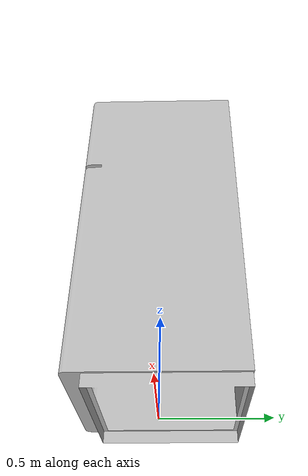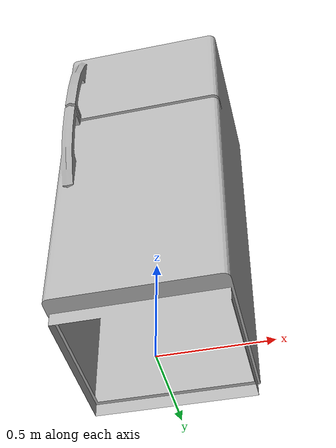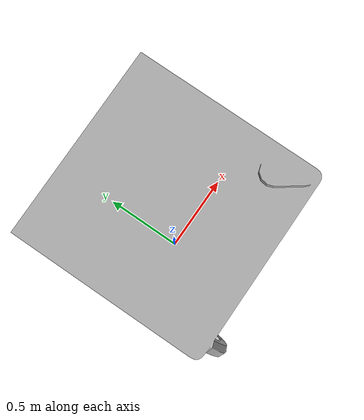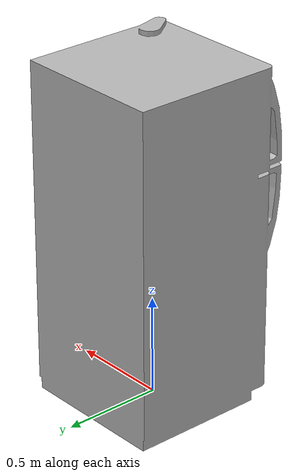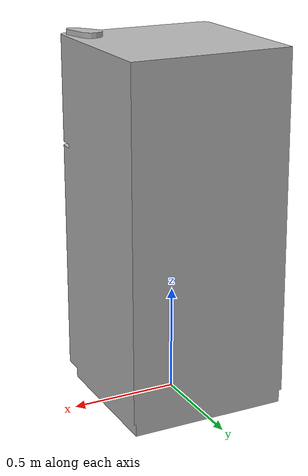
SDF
<sdf version="1.5">
  <model name="refrigerator">
    <static>true</static>
    <link name="link">
      <collision name="collision">
        <pose>-0.007078 0.009991 0.837838 0 0 0</pose>
        <geometry>
          <box>
            <size>0.781084 0.825312 1.660790</size>
          </box>
        </geometry>
      </collision>
      <visual name="visual">
        <geometry>
          <mesh>
            <uri>model://refrigerator/meshes/refrigerator.obj</uri>
            <scale>0.01 0.01 0.01</scale>
          </mesh>
        </geometry>
      </visual>
    </link>
  </model>
</sdf>
